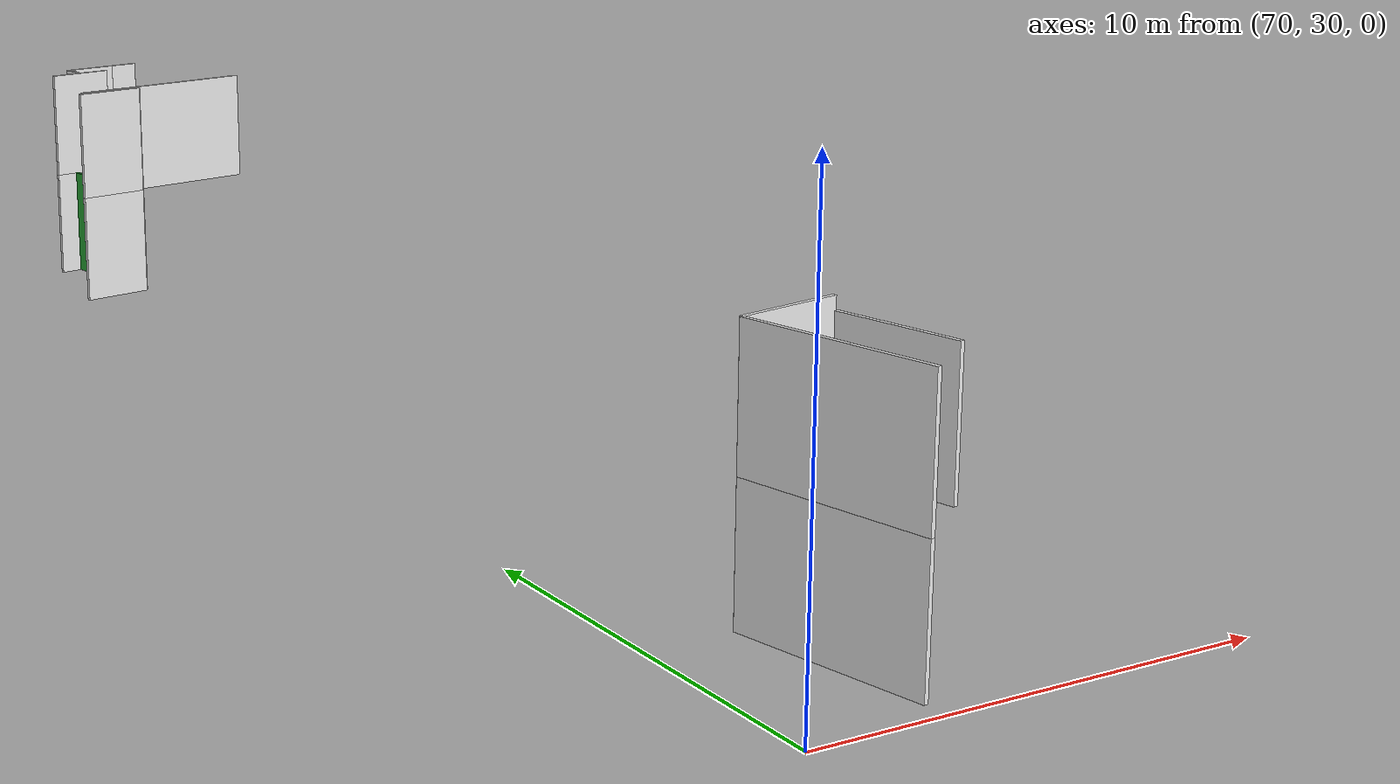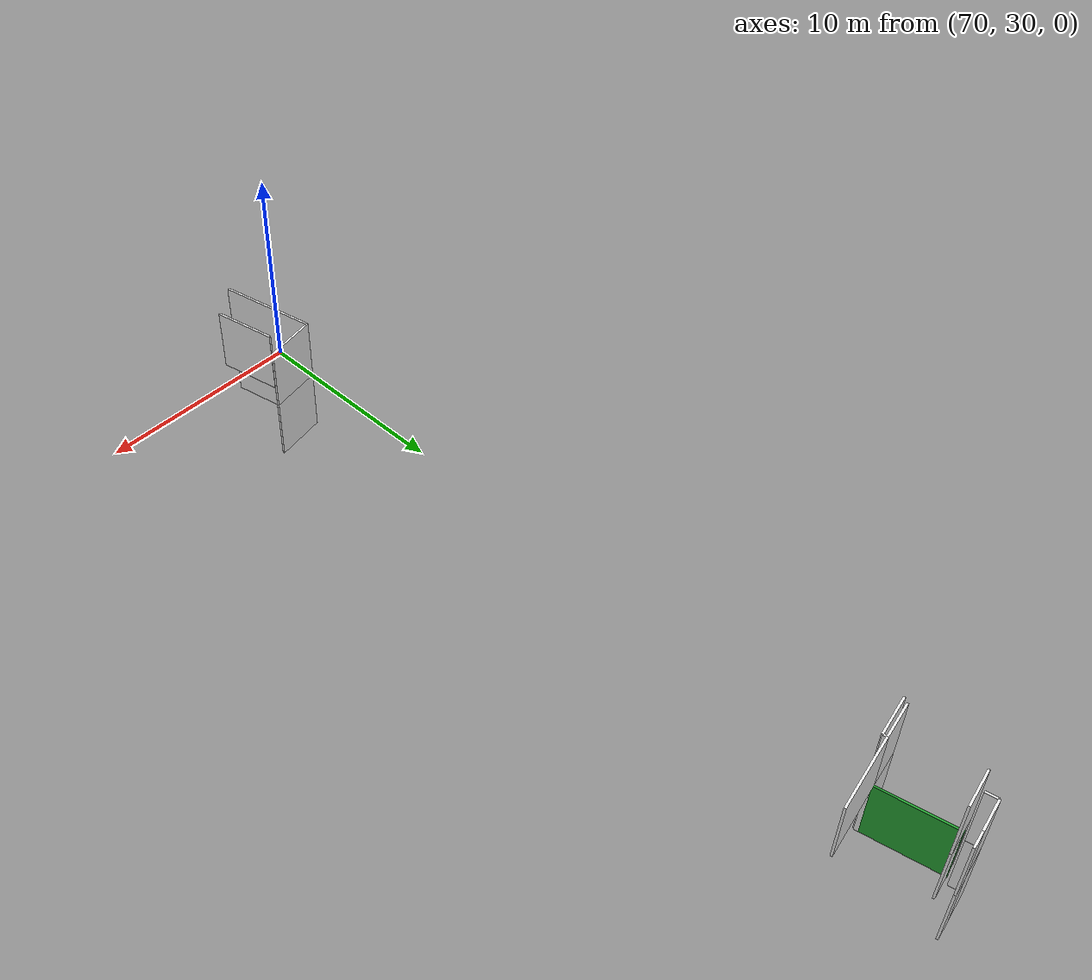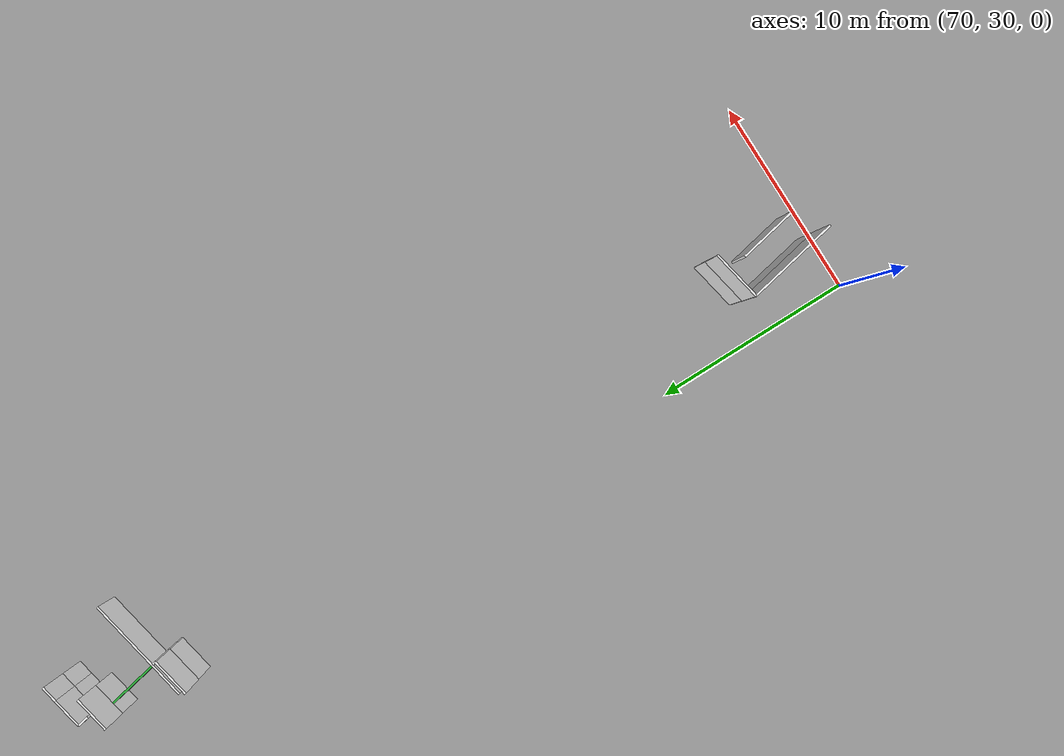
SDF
<sdf version="1.6">
 <world name="default">
  <model name="wall_72.2_68.0_1.5">
   <static>true</static>
   <pose>72.16500000003725 68.04500000015832 1.5 0 0 1.767083239622093</pose>
   <link name="link">
    <visual name="visual">
     <geometry><box><size>3.5379372523187618 0.1 3</size></box></geometry>
     <material>
      <script><uri>file://media/materials/scripts/gazebo.material</uri><name>Gazebo/Green</name></script>
     </material>
    </visual>
    <collision name="collision"><geometry><box><size>3.5379372523187618 0.1 3</size></box></geometry></collision>
   </link>
  </model>
  <model name="wall_72.0_70.2_1.5">
   <static>true</static>
   <pose>72.04000000000815 70.22999999998137 1.5 0 0 1.7539071441075598</pose>
   <link name="link">
    <visual name="visual">
     <geometry><box><size>0.5491812087528287 0.1 3</size></box></geometry>
     <material>
      <script><uri>file://media/materials/scripts/gazebo.material</uri><name>Gazebo/White</name></script>
     </material>
    </visual>
    <collision name="collision"><geometry><box><size>0.5491812087528287 0.1 3</size></box></geometry></collision>
   </link>
  </model>
  <model name="wall_72.7_70.6_1.5">
   <static>true</static>
   <pose>72.72500000000582 70.64500000001863 1.5 0 0 0.19477776480304612</pose>
   <link name="link">
    <visual name="visual">
     <geometry><box><size>1.4983324064140755 0.1 3</size></box></geometry>
     <material>
      <script><uri>file://media/materials/scripts/gazebo.material</uri><name>Gazebo/White</name></script>
     </material>
    </visual>
    <collision name="collision"><geometry><box><size>1.4983324064140755 0.1 3</size></box></geometry></collision>
   </link>
  </model>
  <model name="wall_73.9_70.9_1.5">
   <static>true</static>
   <pose>73.85500000001048 70.86499999999069 1.5 0 0 0.18763977169544066</pose>
   <link name="link">
    <visual name="visual">
     <geometry><box><size>0.8041144196810251 0.1 3</size></box></geometry>
     <material>
      <script><uri>file://media/materials/scripts/gazebo.material</uri><name>Gazebo/White</name></script>
     </material>
    </visual>
    <collision name="collision"><geometry><box><size>0.8041144196810251 0.1 3</size></box></geometry></collision>
   </link>
  </model>
  <model name="wall_71.7_66.1_1.5">
   <static>true</static>
   <pose>71.65499999999884 66.14500000001863 1.5 0 0 -2.9509537476359715</pose>
   <link name="link">
    <visual name="visual">
     <geometry><box><size>1.741551032878692 0.1 3</size></box></geometry>
     <material>
      <script><uri>file://media/materials/scripts/gazebo.material</uri><name>Gazebo/White</name></script>
     </material>
    </visual>
    <collision name="collision"><geometry><box><size>1.741551032878692 0.1 3</size></box></geometry></collision>
   </link>
  </model>
  <model name="wall_72.1_69.8_1.5">
   <static>true</static>
   <pose>72.08499999999185 69.75500000012107 1.5 0 0 0.19522165028584915</pose>
   <link name="link">
    <visual name="visual">
     <geometry><box><size>1.804272706639735 0.1 3</size></box></geometry>
     <material>
      <script><uri>file://media/materials/scripts/gazebo.material</uri><name>Gazebo/White</name></script>
     </material>
    </visual>
    <collision name="collision"><geometry><box><size>1.804272706639735 0.1 3</size></box></geometry></collision>
   </link>
  </model>
  <model name="wall_74.1_33.1_4.5">
   <static>true</static>
   <pose>74.06999999997788 33.06499999994412 4.5 0 0 1.7661524605065864</pose>
   <link name="link">
    <visual name="visual">
     <geometry><box><size>2.8848743474229677 0.1 3</size></box></geometry>
     <material>
      <script><uri>file://media/materials/scripts/gazebo.material</uri><name>Gazebo/White</name></script>
     </material>
    </visual>
    <collision name="collision"><geometry><box><size>2.8848743474229677 0.1 3</size></box></geometry></collision>
   </link>
  </model>
  <model name="wall_71.6_65.9_1.5">
   <static>true</static>
   <pose>71.60000000000582 65.93000000016764 1.5 0 0 0.19739555979685758</pose>
   <link name="link">
    <visual name="visual">
     <geometry><box><size>1.9376274151090942 0.1 3</size></box></geometry>
     <material>
      <script><uri>file://media/materials/scripts/gazebo.material</uri><name>Gazebo/White</name></script>
     </material>
    </visual>
    <collision name="collision"><geometry><box><size>1.9376274151090942 0.1 3</size></box></geometry></collision>
   </link>
  </model>
  <model name="wall_72.5_66.2_1.5">
   <static>true</static>
   <pose>72.52999999999884 66.21500000008382 1.5 0 0 1.77829255318378</pose>
   <link name="link">
    <visual name="visual">
     <geometry><box><size>0.19416487833047835 0.1 3</size></box></geometry>
     <material>
      <script><uri>file://media/materials/scripts/gazebo.material</uri><name>Gazebo/White</name></script>
     </material>
    </visual>
    <collision name="collision"><geometry><box><size>0.19416487833047835 0.1 3</size></box></geometry></collision>
   </link>
  </model>
  <model name="wall_73.3_35.2_1.5">
   <static>true</static>
   <pose>73.27499999999418 35.230000000214204 1.5 0 0 -2.946572386191703</pose>
   <link name="link">
    <visual name="visual">
     <geometry><box><size>2.4769537742856995 0.1 3</size></box></geometry>
     <material>
      <script><uri>file://media/materials/scripts/gazebo.material</uri><name>Gazebo/White</name></script>
     </material>
    </visual>
    <collision name="collision"><geometry><box><size>2.4769537742856995 0.1 3</size></box></geometry></collision>
   </link>
  </model>
  <model name="wall_72.5_32.8_1.5">
   <static>true</static>
   <pose>72.5 32.765000000130385 1.5 0 0 -1.3755624583535375</pose>
   <link name="link">
    <visual name="visual">
     <geometry><box><size>4.536176804498029 0.1 3</size></box></geometry>
     <material>
      <script><uri>file://media/materials/scripts/gazebo.material</uri><name>Gazebo/White</name></script>
     </material>
    </visual>
    <collision name="collision"><geometry><box><size>4.536176804498029 0.1 3</size></box></geometry></collision>
   </link>
  </model>
  <model name="wall_72.0_70.2_4.5">
   <static>true</static>
   <pose>72.04000000000815 70.22999999998137 4.5 0 0 1.7539071441075598</pose>
   <link name="link">
    <visual name="visual">
     <geometry><box><size>0.5491812087528287 0.1 3</size></box></geometry>
     <material>
      <script><uri>file://media/materials/scripts/gazebo.material</uri><name>Gazebo/White</name></script>
     </material>
    </visual>
    <collision name="collision"><geometry><box><size>0.5491812087528287 0.1 3</size></box></geometry></collision>
   </link>
  </model>
  <model name="wall_72.7_70.6_4.5">
   <static>true</static>
   <pose>72.72500000000582 70.64500000001863 4.5 0 0 0.19477776480304612</pose>
   <link name="link">
    <visual name="visual">
     <geometry><box><size>1.4983324064140755 0.1 3</size></box></geometry>
     <material>
      <script><uri>file://media/materials/scripts/gazebo.material</uri><name>Gazebo/White</name></script>
     </material>
    </visual>
    <collision name="collision"><geometry><box><size>1.4983324064140755 0.1 3</size></box></geometry></collision>
   </link>
  </model>
  <model name="wall_73.9_70.9_4.5">
   <static>true</static>
   <pose>73.85500000001048 70.86499999999069 4.5 0 0 0.18763977169544066</pose>
   <link name="link">
    <visual name="visual">
     <geometry><box><size>0.8041144196810251 0.1 3</size></box></geometry>
     <material>
      <script><uri>file://media/materials/scripts/gazebo.material</uri><name>Gazebo/White</name></script>
     </material>
    </visual>
    <collision name="collision"><geometry><box><size>0.8041144196810251 0.1 3</size></box></geometry></collision>
   </link>
  </model>
  <model name="wall_74.2_66.7_4.5">
   <static>true</static>
   <pose>74.24499999999534 66.65500000002794 4.5 0 0 -2.945305740749762</pose>
   <link name="link">
    <visual name="visual">
     <geometry><box><size>3.537937252090402 0.1 3</size></box></geometry>
     <material>
      <script><uri>file://media/materials/scripts/gazebo.material</uri><name>Gazebo/White</name></script>
     </material>
    </visual>
    <collision name="collision"><geometry><box><size>3.537937252090402 0.1 3</size></box></geometry></collision>
   </link>
  </model>
  <model name="wall_71.7_66.1_4.5">
   <static>true</static>
   <pose>71.65499999999884 66.14500000001863 4.5 0 0 -2.9509537476359715</pose>
   <link name="link">
    <visual name="visual">
     <geometry><box><size>1.741551032878692 0.1 3</size></box></geometry>
     <material>
      <script><uri>file://media/materials/scripts/gazebo.material</uri><name>Gazebo/White</name></script>
     </material>
    </visual>
    <collision name="collision"><geometry><box><size>1.741551032878692 0.1 3</size></box></geometry></collision>
   </link>
  </model>
  <model name="wall_72.1_69.8_4.5">
   <static>true</static>
   <pose>72.08499999999185 69.75500000012107 4.5 0 0 0.19522165028584915</pose>
   <link name="link">
    <visual name="visual">
     <geometry><box><size>1.804272706639735 0.1 3</size></box></geometry>
     <material>
      <script><uri>file://media/materials/scripts/gazebo.material</uri><name>Gazebo/White</name></script>
     </material>
    </visual>
    <collision name="collision"><geometry><box><size>1.804272706639735 0.1 3</size></box></geometry></collision>
   </link>
  </model>
  <model name="wall_71.6_65.9_4.5">
   <static>true</static>
   <pose>71.60000000000582 65.93000000016764 4.5 0 0 0.19739555979685758</pose>
   <link name="link">
    <visual name="visual">
     <geometry><box><size>1.9376274151090942 0.1 3</size></box></geometry>
     <material>
      <script><uri>file://media/materials/scripts/gazebo.material</uri><name>Gazebo/White</name></script>
     </material>
    </visual>
    <collision name="collision"><geometry><box><size>1.9376274151090942 0.1 3</size></box></geometry></collision>
   </link>
  </model>
  <model name="wall_72.5_66.2_4.5">
   <static>true</static>
   <pose>72.52999999999884 66.21500000008382 4.5 0 0 1.77829255318378</pose>
   <link name="link">
    <visual name="visual">
     <geometry><box><size>0.19416487833047835 0.1 3</size></box></geometry>
     <material>
      <script><uri>file://media/materials/scripts/gazebo.material</uri><name>Gazebo/White</name></script>
     </material>
    </visual>
    <collision name="collision"><geometry><box><size>0.19416487833047835 0.1 3</size></box></geometry></collision>
   </link>
  </model>
  <model name="wall_73.3_35.2_4.5">
   <static>true</static>
   <pose>73.27499999999418 35.230000000214204 4.5 0 0 -2.946572386191703</pose>
   <link name="link">
    <visual name="visual">
     <geometry><box><size>2.4769537742856995 0.1 3</size></box></geometry>
     <material>
      <script><uri>file://media/materials/scripts/gazebo.material</uri><name>Gazebo/White</name></script>
     </material>
    </visual>
    <collision name="collision"><geometry><box><size>2.4769537742856995 0.1 3</size></box></geometry></collision>
   </link>
  </model>
  <model name="wall_72.5_32.8_4.5">
   <static>true</static>
   <pose>72.5 32.765000000130385 4.5 0 0 -1.3755624583535375</pose>
   <link name="link">
    <visual name="visual">
     <geometry><box><size>4.536176804498029 0.1 3</size></box></geometry>
     <material>
      <script><uri>file://media/materials/scripts/gazebo.material</uri><name>Gazebo/White</name></script>
     </material>
    </visual>
    <collision name="collision"><geometry><box><size>4.536176804498029 0.1 3</size></box></geometry></collision>
   </link>
  </model>
 </world>
</sdf>
